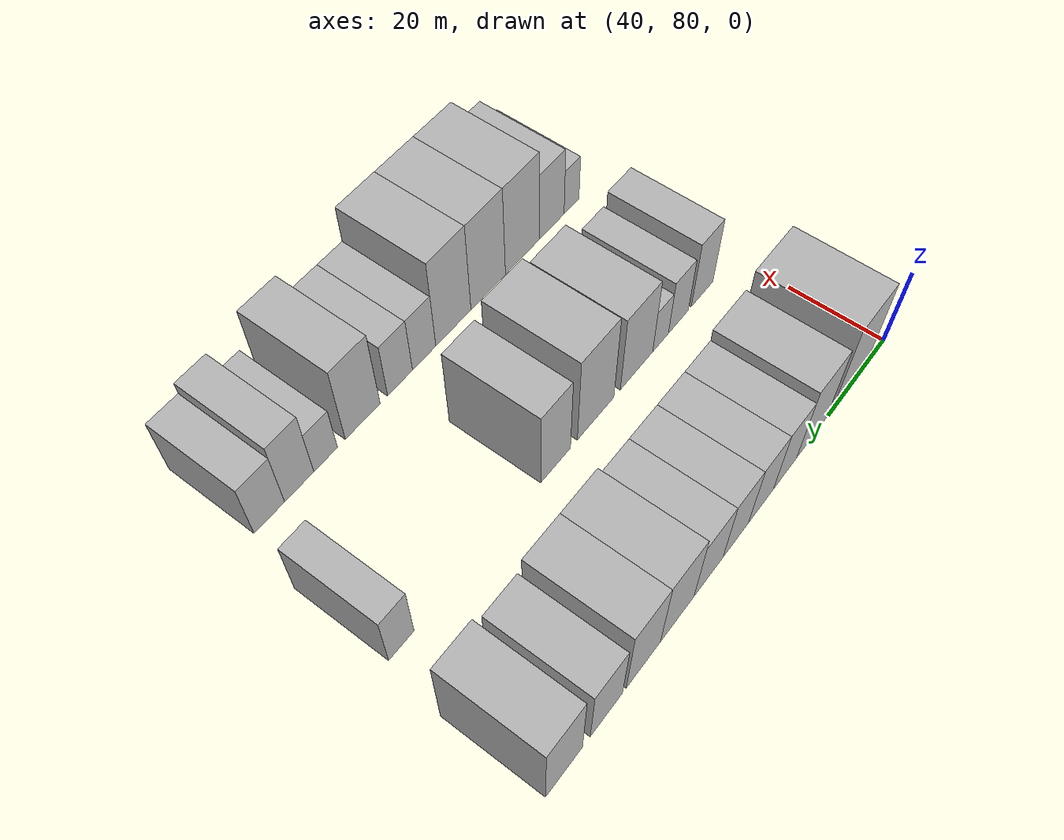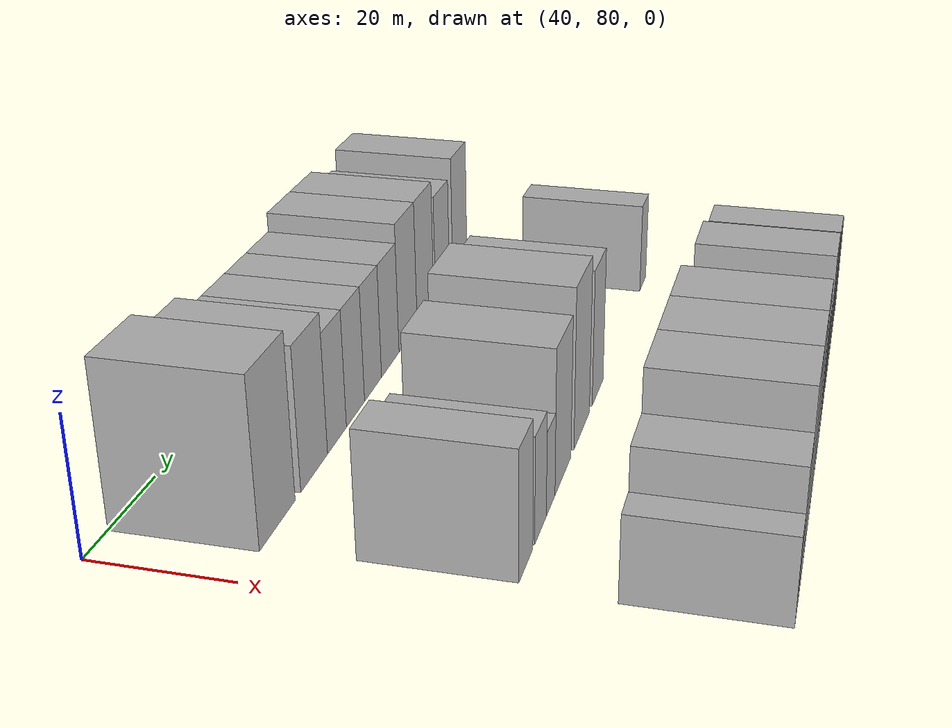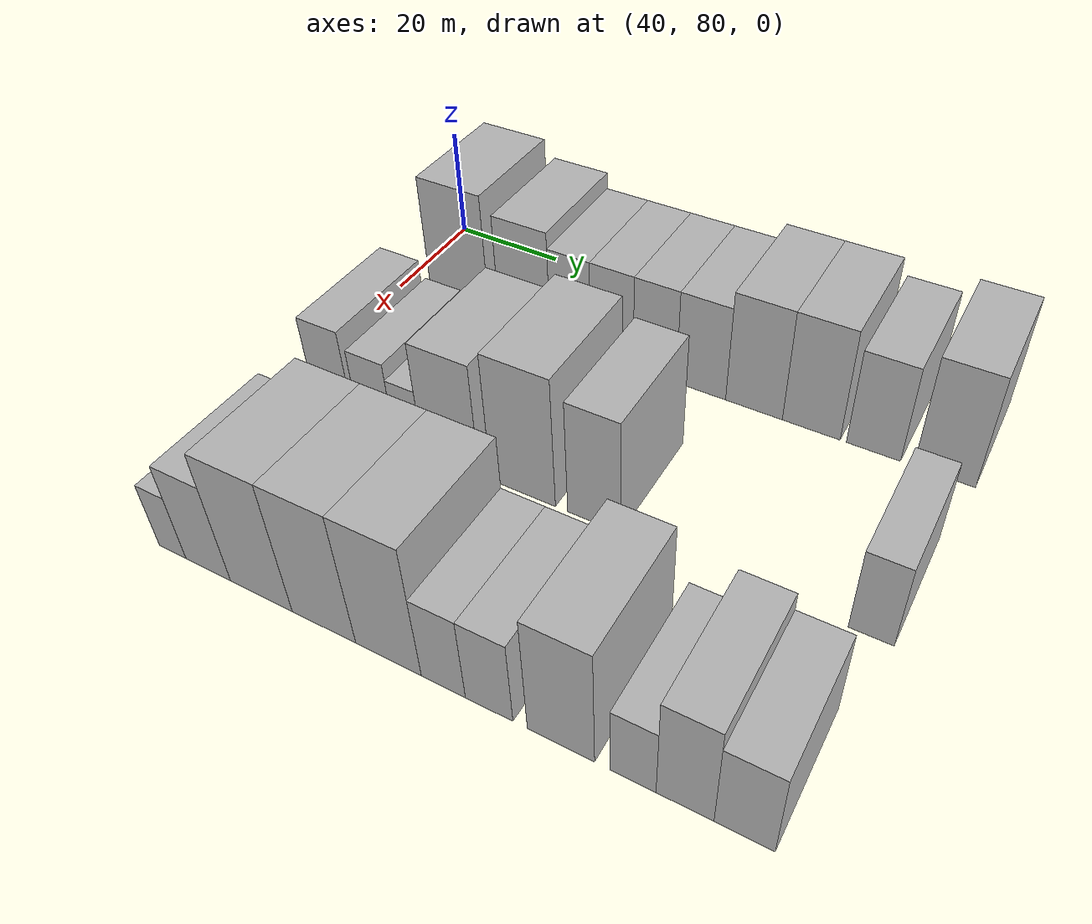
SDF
<sdf version="1.6">
 <world name="default">
  <model name="building_48">
   <static>1</static>
   <pose>50.0000 92.6302 0 0.000000 0.000000 0.000000</pose>
   <link name="link">
    <pose>0 0 12.00 0 0 0</pose>
    <collision name="collision"><geometry><box><size>20.0000 11.9751 24.0000</size></box></geometry></collision>
    <visual name="visual">
     <cast_shadows>0</cast_shadows>
     <geometry><box><size>20.0000 11.9751 24.0000</size></box></geometry>
     <material>
      <script>
       <uri>model://HANNAS_wall/materials/scripts</uri>
       <uri>model://HANNAS_wall/materials/textures</uri>
       <name>vrc/HANNAS_wall</name>
      </script>
     </material>
    </visual>
   </link>
  </model>
  <model name="building_49">
   <static>1</static>
   <pose>50.0000 105.6577 0 0.000000 0.000000 0.000000</pose>
   <link name="link">
    <pose>0 0 10.50 0 0 0</pose>
    <collision name="collision"><geometry><box><size>20.0000 10.0800 21.0000</size></box></geometry></collision>
    <visual name="visual">
     <cast_shadows>0</cast_shadows>
     <geometry><box><size>20.0000 10.0800 21.0000</size></box></geometry>
     <material>
      <script>
       <uri>model://HANNAS_wall/materials/scripts</uri>
       <uri>model://HANNAS_wall/materials/textures</uri>
       <name>vrc/HANNAS_wall</name>
      </script>
     </material>
    </visual>
   </link>
  </model>
  <model name="building_50">
   <static>1</static>
   <pose>50.0000 114.5167 0 0.000000 0.000000 0.000000</pose>
   <link name="link">
    <pose>0 0 9.00 0 0 0</pose>
    <collision name="collision"><geometry><box><size>20.0000 7.6378 18.0000</size></box></geometry></collision>
    <visual name="visual">
     <cast_shadows>0</cast_shadows>
     <geometry><box><size>20.0000 7.6378 18.0000</size></box></geometry>
     <material>
      <script>
       <uri>model://HANNAS_wall/materials/scripts</uri>
       <uri>model://HANNAS_wall/materials/textures</uri>
       <name>vrc/HANNAS_wall</name>
      </script>
     </material>
    </visual>
   </link>
  </model>
  <model name="building_51">
   <static>1</static>
   <pose>50.0000 122.2608 0 0.000000 0.000000 0.000000</pose>
   <link name="link">
    <pose>0 0 9.00 0 0 0</pose>
    <collision name="collision"><geometry><box><size>20.0000 7.8504 18.0000</size></box></geometry></collision>
    <visual name="visual">
     <cast_shadows>0</cast_shadows>
     <geometry><box><size>20.0000 7.8504 18.0000</size></box></geometry>
     <material>
      <script>
       <uri>model://HANNAS_wall/materials/scripts</uri>
       <uri>model://HANNAS_wall/materials/textures</uri>
       <name>vrc/HANNAS_wall</name>
      </script>
     </material>
    </visual>
   </link>
  </model>
  <model name="building_52">
   <static>1</static>
   <pose>50.0000 130.0872 0 0.000000 0.000000 0.000000</pose>
   <link name="link">
    <pose>0 0 9.00 0 0 0</pose>
    <collision name="collision"><geometry><box><size>20.0000 7.8025 18.0000</size></box></geometry></collision>
    <visual name="visual">
     <cast_shadows>0</cast_shadows>
     <geometry><box><size>20.0000 7.8025 18.0000</size></box></geometry>
     <material>
      <script>
       <uri>model://HANNAS_wall/materials/scripts</uri>
       <uri>model://HANNAS_wall/materials/textures</uri>
       <name>vrc/HANNAS_wall</name>
      </script>
     </material>
    </visual>
   </link>
  </model>
  <model name="building_53">
   <static>1</static>
   <pose>50.0000 138.2810 0 0.000000 0.000000 0.000000</pose>
   <link name="link">
    <pose>0 0 9.00 0 0 0</pose>
    <collision name="collision"><geometry><box><size>20.0000 8.5850 18.0000</size></box></geometry></collision>
    <visual name="visual">
     <cast_shadows>0</cast_shadows>
     <geometry><box><size>20.0000 8.5850 18.0000</size></box></geometry>
     <material>
      <script>
       <uri>model://HANNAS_wall/materials/scripts</uri>
       <uri>model://HANNAS_wall/materials/textures</uri>
       <name>vrc/HANNAS_wall</name>
      </script>
     </material>
    </visual>
   </link>
  </model>
  <model name="building_54">
   <static>1</static>
   <pose>50.0000 147.3408 0 0.000000 0.000000 0.000000</pose>
   <link name="link">
    <pose>0 0 10.50 0 0 0</pose>
    <collision name="collision"><geometry><box><size>20.0000 9.5347 21.0000</size></box></geometry></collision>
    <visual name="visual">
     <cast_shadows>0</cast_shadows>
     <geometry><box><size>20.0000 9.5347 21.0000</size></box></geometry>
     <material>
      <script>
       <uri>model://HANNAS_wall/materials/scripts</uri>
       <uri>model://HANNAS_wall/materials/textures</uri>
       <name>vrc/HANNAS_wall</name>
      </script>
     </material>
    </visual>
   </link>
  </model>
  <model name="building_55">
   <static>1</static>
   <pose>50.0000 156.7847 0 0.000000 0.000000 0.000000</pose>
   <link name="link">
    <pose>0 0 10.50 0 0 0</pose>
    <collision name="collision"><geometry><box><size>20.0000 9.3532 21.0000</size></box></geometry></collision>
    <visual name="visual">
     <cast_shadows>0</cast_shadows>
     <geometry><box><size>20.0000 9.3532 21.0000</size></box></geometry>
     <material>
      <script>
       <uri>model://HANNAS_wall/materials/scripts</uri>
       <uri>model://HANNAS_wall/materials/textures</uri>
       <name>vrc/HANNAS_wall</name>
      </script>
     </material>
    </visual>
   </link>
  </model>
  <model name="building_56">
   <static>1</static>
   <pose>50.0000 166.6585 0 0.000000 0.000000 0.000000</pose>
   <link name="link">
    <pose>0 0 9.00 0 0 0</pose>
    <collision name="collision"><geometry><box><size>20.0000 8.3943 18.0000</size></box></geometry></collision>
    <visual name="visual">
     <cast_shadows>0</cast_shadows>
     <geometry><box><size>20.0000 8.3943 18.0000</size></box></geometry>
     <material>
      <script>
       <uri>model://HANNAS_wall/materials/scripts</uri>
       <uri>model://HANNAS_wall/materials/textures</uri>
       <name>vrc/HANNAS_wall</name>
      </script>
     </material>
    </visual>
   </link>
  </model>
  <model name="building_57">
   <static>1</static>
   <pose>50.0000 177.4432 0 0.000000 0.000000 0.000000</pose>
   <link name="link">
    <pose>0 0 10.50 0 0 0</pose>
    <collision name="collision"><geometry><box><size>20.0000 9.1752 21.0000</size></box></geometry></collision>
    <visual name="visual">
     <cast_shadows>0</cast_shadows>
     <geometry><box><size>20.0000 9.1752 21.0000</size></box></geometry>
     <material>
      <script>
       <uri>model://HANNAS_wall/materials/scripts</uri>
       <uri>model://HANNAS_wall/materials/textures</uri>
       <name>vrc/HANNAS_wall</name>
      </script>
     </material>
    </visual>
   </link>
  </model>
  <model name="building_122">
   <static>1</static>
   <pose>82.0000 91.2247 0 0.000000 0.000000 0.000000</pose>
   <link name="link">
    <pose>0 0 9.00 0 0 0</pose>
    <collision name="collision"><geometry><box><size>20.0000 7.2689 18.0000</size></box></geometry></collision>
    <visual name="visual">
     <cast_shadows>0</cast_shadows>
     <geometry><box><size>20.0000 7.2689 18.0000</size></box></geometry>
     <material>
      <script>
       <uri>model://HANNAS_wall/materials/scripts</uri>
       <uri>model://HANNAS_wall/materials/textures</uri>
       <name>vrc/HANNAS_wall</name>
      </script>
     </material>
    </visual>
   </link>
  </model>
  <model name="building_123">
   <static>1</static>
   <pose>82.0000 99.1350 0 0.000000 0.000000 0.000000</pose>
   <link name="link">
    <pose>0 0 7.50 0 0 0</pose>
    <collision name="collision"><geometry><box><size>20.0000 6.5516 15.0000</size></box></geometry></collision>
    <visual name="visual">
     <cast_shadows>0</cast_shadows>
     <geometry><box><size>20.0000 6.5516 15.0000</size></box></geometry>
     <material>
      <script>
       <uri>model://HANNAS_wall/materials/scripts</uri>
       <uri>model://HANNAS_wall/materials/textures</uri>
       <name>vrc/HANNAS_wall</name>
      </script>
     </material>
    </visual>
   </link>
  </model>
  <model name="building_124">
   <static>1</static>
   <pose>82.0000 104.9525 0 0.000000 0.000000 0.000000</pose>
   <link name="link">
    <pose>0 0 6.00 0 0 0</pose>
    <collision name="collision"><geometry><box><size>20.0000 5.0835 12.0000</size></box></geometry></collision>
    <visual name="visual">
     <cast_shadows>0</cast_shadows>
     <geometry><box><size>20.0000 5.0835 12.0000</size></box></geometry>
     <material>
      <script>
       <uri>model://HANNAS_wall/materials/scripts</uri>
       <uri>model://HANNAS_wall/materials/textures</uri>
       <name>vrc/HANNAS_wall</name>
      </script>
     </material>
    </visual>
   </link>
  </model>
  <model name="building_125">
   <static>1</static>
   <pose>82.0000 112.5419 0 0.000000 0.000000 0.000000</pose>
   <link name="link">
    <pose>0 0 10.50 0 0 0</pose>
    <collision name="collision"><geometry><box><size>20.0000 10.0952 21.0000</size></box></geometry></collision>
    <visual name="visual">
     <cast_shadows>0</cast_shadows>
     <geometry><box><size>20.0000 10.0952 21.0000</size></box></geometry>
     <material>
      <script>
       <uri>model://HANNAS_wall/materials/scripts</uri>
       <uri>model://HANNAS_wall/materials/textures</uri>
       <name>vrc/HANNAS_wall</name>
      </script>
     </material>
    </visual>
   </link>
  </model>
  <model name="building_126">
   <static>1</static>
   <pose>82.0000 125.0340 0 0.000000 0.000000 0.000000</pose>
   <link name="link">
    <pose>0 0 12.00 0 0 0</pose>
    <collision name="collision"><geometry><box><size>20.0000 10.8890 24.0000</size></box></geometry></collision>
    <visual name="visual">
     <cast_shadows>0</cast_shadows>
     <geometry><box><size>20.0000 10.8890 24.0000</size></box></geometry>
     <material>
      <script>
       <uri>model://HANNAS_wall/materials/scripts</uri>
       <uri>model://HANNAS_wall/materials/textures</uri>
       <name>vrc/HANNAS_wall</name>
      </script>
     </material>
    </visual>
   </link>
  </model>
  <model name="building_127">
   <static>1</static>
   <pose>82.0000 136.6963 0 0.000000 0.000000 0.000000</pose>
   <link name="link">
    <pose>0 0 10.50 0 0 0</pose>
    <collision name="collision"><geometry><box><size>20.0000 8.4355 21.0000</size></box></geometry></collision>
    <visual name="visual">
     <cast_shadows>0</cast_shadows>
     <geometry><box><size>20.0000 8.4355 21.0000</size></box></geometry>
     <material>
      <script>
       <uri>model://HANNAS_wall/materials/scripts</uri>
       <uri>model://HANNAS_wall/materials/textures</uri>
       <name>vrc/HANNAS_wall</name>
      </script>
     </material>
    </visual>
   </link>
  </model>
  <model name="building_128">
   <static>1</static>
   <pose>82.0000 177.0990 0 0.000000 0.000000 0.000000</pose>
   <link name="link">
    <pose>0 0 7.50 0 0 0</pose>
    <collision name="collision"><geometry><box><size>20.0000 6.1233 15.0000</size></box></geometry></collision>
    <visual name="visual">
     <cast_shadows>0</cast_shadows>
     <geometry><box><size>20.0000 6.1233 15.0000</size></box></geometry>
     <material>
      <script>
       <uri>model://HANNAS_wall/materials/scripts</uri>
       <uri>model://HANNAS_wall/materials/textures</uri>
       <name>vrc/HANNAS_wall</name>
      </script>
     </material>
    </visual>
   </link>
  </model>
  <model name="building_195">
   <static>1</static>
   <pose>114.0000 88.7348 0 0.000000 0.000000 0.000000</pose>
   <link name="link">
    <pose>0 0 6.00 0 0 0</pose>
    <collision name="collision"><geometry><box><size>20.0000 4.8815 12.0000</size></box></geometry></collision>
    <visual name="visual">
     <cast_shadows>0</cast_shadows>
     <geometry><box><size>20.0000 4.8815 12.0000</size></box></geometry>
     <material>
      <script>
       <uri>model://HANNAS_wall/materials/scripts</uri>
       <uri>model://HANNAS_wall/materials/textures</uri>
       <name>vrc/HANNAS_wall</name>
      </script>
     </material>
    </visual>
   </link>
  </model>
  <model name="building_196">
   <static>1</static>
   <pose>114.0000 95.1485 0 0.000000 0.000000 0.000000</pose>
   <link name="link">
    <pose>0 0 9.00 0 0 0</pose>
    <collision name="collision"><geometry><box><size>20.0000 7.9459 18.0000</size></box></geometry></collision>
    <visual name="visual">
     <cast_shadows>0</cast_shadows>
     <geometry><box><size>20.0000 7.9459 18.0000</size></box></geometry>
     <material>
      <script>
       <uri>model://HANNAS_wall/materials/scripts</uri>
       <uri>model://HANNAS_wall/materials/textures</uri>
       <name>vrc/HANNAS_wall</name>
      </script>
     </material>
    </visual>
   </link>
  </model>
  <model name="building_197">
   <static>1</static>
   <pose>114.0000 104.3905 0 0.000000 0.000000 0.000000</pose>
   <link name="link">
    <pose>0 0 12.00 0 0 0</pose>
    <collision name="collision"><geometry><box><size>20.0000 10.5380 24.0000</size></box></geometry></collision>
    <visual name="visual">
     <cast_shadows>0</cast_shadows>
     <geometry><box><size>20.0000 10.5380 24.0000</size></box></geometry>
     <material>
      <script>
       <uri>model://HANNAS_wall/materials/scripts</uri>
       <uri>model://HANNAS_wall/materials/textures</uri>
       <name>vrc/HANNAS_wall</name>
      </script>
     </material>
    </visual>
   </link>
  </model>
  <model name="building_198">
   <static>1</static>
   <pose>114.0000 114.8303 0 0.000000 0.000000 0.000000</pose>
   <link name="link">
    <pose>0 0 12.00 0 0 0</pose>
    <collision name="collision"><geometry><box><size>20.0000 10.3416 24.0000</size></box></geometry></collision>
    <visual name="visual">
     <cast_shadows>0</cast_shadows>
     <geometry><box><size>20.0000 10.3416 24.0000</size></box></geometry>
     <material>
      <script>
       <uri>model://HANNAS_wall/materials/scripts</uri>
       <uri>model://HANNAS_wall/materials/textures</uri>
       <name>vrc/HANNAS_wall</name>
      </script>
     </material>
    </visual>
   </link>
  </model>
  <model name="building_199">
   <static>1</static>
   <pose>114.0000 125.0613 0 0.000000 0.000000 0.000000</pose>
   <link name="link">
    <pose>0 0 12.00 0 0 0</pose>
    <collision name="collision"><geometry><box><size>20.0000 10.1205 24.0000</size></box></geometry></collision>
    <visual name="visual">
     <cast_shadows>0</cast_shadows>
     <geometry><box><size>20.0000 10.1205 24.0000</size></box></geometry>
     <material>
      <script>
       <uri>model://HANNAS_wall/materials/scripts</uri>
       <uri>model://HANNAS_wall/materials/textures</uri>
       <name>vrc/HANNAS_wall</name>
      </script>
     </material>
    </visual>
   </link>
  </model>
  <model name="building_200">
   <static>1</static>
   <pose>114.0000 133.3882 0 0.000000 0.000000 0.000000</pose>
   <link name="link">
    <pose>0 0 7.50 0 0 0</pose>
    <collision name="collision"><geometry><box><size>20.0000 6.5331 15.0000</size></box></geometry></collision>
    <visual name="visual">
     <cast_shadows>0</cast_shadows>
     <geometry><box><size>20.0000 6.5331 15.0000</size></box></geometry>
     <material>
      <script>
       <uri>model://HANNAS_wall/materials/scripts</uri>
       <uri>model://HANNAS_wall/materials/textures</uri>
       <name>vrc/HANNAS_wall</name>
      </script>
     </material>
    </visual>
   </link>
  </model>
  <model name="building_201">
   <static>1</static>
   <pose>114.0000 140.0542 0 0.000000 0.000000 0.000000</pose>
   <link name="link">
    <pose>0 0 7.50 0 0 0</pose>
    <collision name="collision"><geometry><box><size>20.0000 6.7989 15.0000</size></box></geometry></collision>
    <visual name="visual">
     <cast_shadows>0</cast_shadows>
     <geometry><box><size>20.0000 6.7989 15.0000</size></box></geometry>
     <material>
      <script>
       <uri>model://HANNAS_wall/materials/scripts</uri>
       <uri>model://HANNAS_wall/materials/textures</uri>
       <name>vrc/HANNAS_wall</name>
      </script>
     </material>
    </visual>
   </link>
  </model>
  <model name="building_202">
   <static>1</static>
   <pose>114.0000 150.0223 0 0.000000 0.000000 0.000000</pose>
   <link name="link">
    <pose>0 0 10.50 0 0 0</pose>
    <collision name="collision"><geometry><box><size>20.0000 9.1374 21.0000</size></box></geometry></collision>
    <visual name="visual">
     <cast_shadows>0</cast_shadows>
     <geometry><box><size>20.0000 9.1374 21.0000</size></box></geometry>
     <material>
      <script>
       <uri>model://HANNAS_wall/materials/scripts</uri>
       <uri>model://HANNAS_wall/materials/textures</uri>
       <name>vrc/HANNAS_wall</name>
      </script>
     </material>
    </visual>
   </link>
  </model>
  <model name="building_203">
   <static>1</static>
   <pose>114.0000 159.5664 0 0.000000 0.000000 0.000000</pose>
   <link name="link">
    <pose>0 0 6.00 0 0 0</pose>
    <collision name="collision"><geometry><box><size>20.0000 5.9508 12.0000</size></box></geometry></collision>
    <visual name="visual">
     <cast_shadows>0</cast_shadows>
     <geometry><box><size>20.0000 5.9508 12.0000</size></box></geometry>
     <material>
      <script>
       <uri>model://HANNAS_wall/materials/scripts</uri>
       <uri>model://HANNAS_wall/materials/textures</uri>
       <name>vrc/HANNAS_wall</name>
      </script>
     </material>
    </visual>
   </link>
  </model>
  <model name="building_204">
   <static>1</static>
   <pose>114.0000 166.1437 0 0.000000 0.000000 0.000000</pose>
   <link name="link">
    <pose>0 0 9.00 0 0 0</pose>
    <collision name="collision"><geometry><box><size>20.0000 7.2038 18.0000</size></box></geometry></collision>
    <visual name="visual">
     <cast_shadows>0</cast_shadows>
     <geometry><box><size>20.0000 7.2038 18.0000</size></box></geometry>
     <material>
      <script>
       <uri>model://HANNAS_wall/materials/scripts</uri>
       <uri>model://HANNAS_wall/materials/textures</uri>
       <name>vrc/HANNAS_wall</name>
      </script>
     </material>
    </visual>
   </link>
  </model>
  <model name="building_205">
   <static>1</static>
   <pose>114.0000 173.4007 0 0.000000 0.000000 0.000000</pose>
   <link name="link">
    <pose>0 0 7.50 0 0 0</pose>
    <collision name="collision"><geometry><box><size>20.0000 7.3102 15.0000</size></box></geometry></collision>
    <visual name="visual">
     <cast_shadows>0</cast_shadows>
     <geometry><box><size>20.0000 7.3102 15.0000</size></box></geometry>
     <material>
      <script>
       <uri>model://HANNAS_wall/materials/scripts</uri>
       <uri>model://HANNAS_wall/materials/textures</uri>
       <name>vrc/HANNAS_wall</name>
      </script>
     </material>
    </visual>
   </link>
  </model>
 </world>
</sdf>
